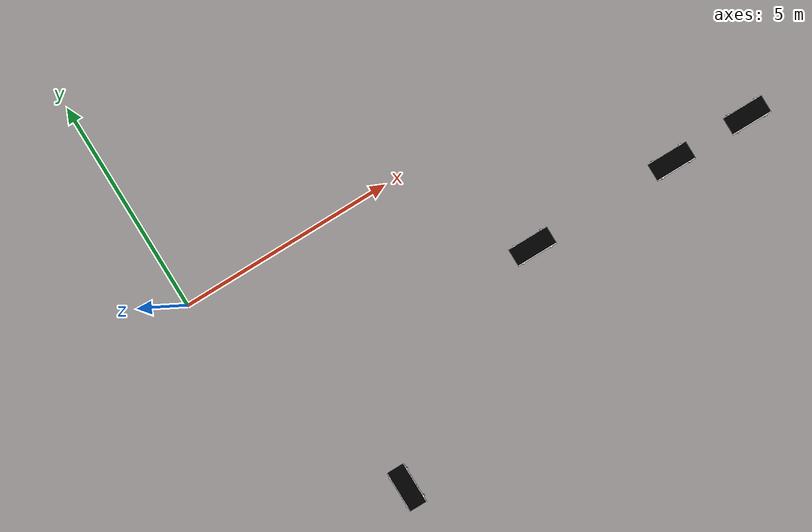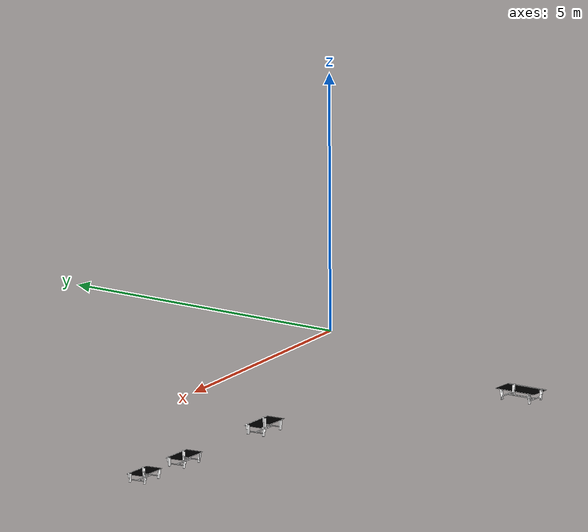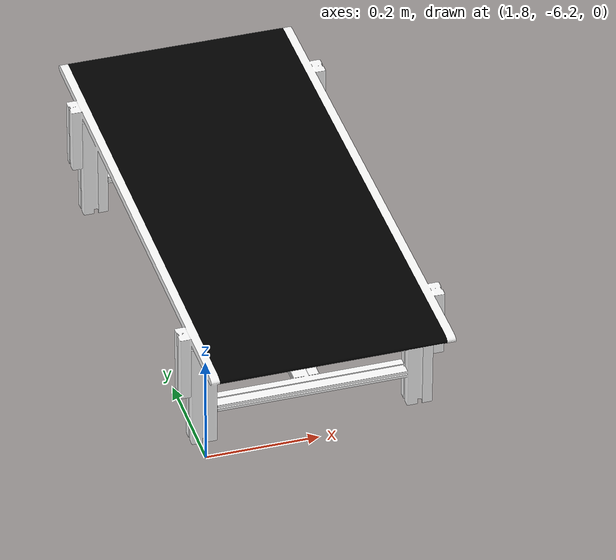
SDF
<?xml version="1.0" ?>
<sdf version="1.4">

   <model name='conveyor_belt'>
      <model name='conveyorbelt_fixed_1'>
        <static>1</static>
        <link name='belt_visual_1'>
          <pose>7 -2.8 0 0 -0 1.57</pose>
          <visual name='visual'>
            <geometry>
              <mesh>
                <scale>1 0.8 0.3</scale>
                <uri>model://conveyor_belt/meshes/conveyor_belt.dae</uri>
              </mesh>
            </geometry>
          </visual>
          <self_collide>0</self_collide>
          <enable_wind>0</enable_wind>
          <kinematic>0</kinematic>
        </link>
      </model>
      <model name='conveyorbelt_moving_1'>
        <allow_auto_disable>0</allow_auto_disable>
        <static>0</static>
        <pose>7 -2.8 0.23 0 -0 1.57</pose>
        <link name='belt_moving_1'>
          <inertial>
            <mass>100</mass>
            <inertia>
              <ixx>0</ixx>
              <ixy>0</ixy>
              <ixz>0</ixz>
              <iyy>0</iyy>
              <iyz>0</iyz>
              <izz>0</izz>
            </inertia>
            <pose>0 0 0 0 0 0</pose>
          </inertial>
          <collision name='belt_collision_1'>
            <geometry>
              <box>
                <size>0.425 0.95 1e-05</size>
              </box>
            </geometry>
            <surface>
              <friction>
                <ode>
                  <mu>100</mu>
                  <mu2>100</mu2>
                </ode>
                <torsional>
                  <coefficient>1000</coefficient>
                  <patch_radius>0.1</patch_radius>
                  <ode/>
                </torsional>
              </friction>
              <contact>
                <ode/>
              </contact>
              <bounce/>
            </surface>
            <max_contacts>10</max_contacts>
          </collision>
          <self_collide>0</self_collide>
          <enable_wind>0</enable_wind>
          <kinematic>0</kinematic>
        </link>
      </model>
      <model name='conveyorbelt_fixed_2'>
        <static>1</static>
        <link name='belt_visual_2'>
          <pose>10.5 -2.8 0 0 -0 1.57</pose>
          <visual name='visual'>
            <geometry>
              <mesh>
                <scale>1 0.8 0.3</scale>
                <uri>model://conveyor_belt/meshes/conveyor_belt.dae</uri>
              </mesh>
            </geometry>
          </visual>
          <self_collide>0</self_collide>
          <enable_wind>0</enable_wind>
          <kinematic>0</kinematic>
        </link>
      </model>
      <model name='conveyorbelt_moving_2'>
        <allow_auto_disable>0</allow_auto_disable>
        <static>0</static>
        <pose>10.5 -2.8 0.23 0 -0 1.57</pose>
        <link name='belt_moving_2'>
          <inertial>
            <mass>100</mass>
            <inertia>
              <ixx>0</ixx>
              <ixy>0</ixy>
              <ixz>0</ixz>
              <iyy>0</iyy>
              <iyz>0</iyz>
              <izz>0</izz>
            </inertia>
            <pose>0 0 0 0 -0 0</pose>
          </inertial>
          <collision name='belt_collision_2'>
            <geometry>
              <box>
                <size>0.425 0.95 1e-05</size>
              </box>
            </geometry>
            <surface>
              <friction>
                <ode>
                  <mu>100</mu>
                  <mu2>100</mu2>
                </ode>
                <torsional>
                  <coefficient>1000</coefficient>
                  <patch_radius>0.1</patch_radius>
                  <ode/>
                </torsional>
              </friction>
              <contact>
                <ode/>
              </contact>
              <bounce/>
            </surface>
            <max_contacts>10</max_contacts>
          </collision>
          <self_collide>0</self_collide>
          <enable_wind>0</enable_wind>
          <kinematic>0</kinematic>
        </link>
      </model>
      <model name='conveyorbelt_fixed_3'>
        <static>1</static>
        <link name='belt_visual_3'>
          <pose>12.4 -2.8 0 0 -0 1.57</pose>
          <visual name='visual'>
            <geometry>
              <mesh>
                <scale>1 0.8 0.3</scale>
                <uri>model://conveyor_belt/meshes/conveyor_belt.dae</uri>
              </mesh>
            </geometry>
          </visual>
          <self_collide>0</self_collide>
          <enable_wind>0</enable_wind>
          <kinematic>0</kinematic>
        </link>
      </model>
      <model name='conveyorbelt_moving_3'>
        <allow_auto_disable>0</allow_auto_disable>
        <static>0</static>
        <pose>12.4 -2.8 0.23 0 -0 1.57</pose>
        <link name='belt_moving_3'>
          <inertial>
            <mass>100</mass>
            <inertia>
              <ixx>0</ixx>
              <ixy>0</ixy>
              <ixz>0</ixz>
              <iyy>0</iyy>
              <iyz>0</iyz>
              <izz>0</izz>
            </inertia>
            <pose>0 0 0 0 -0 0</pose>
          </inertial>
          <collision name='belt_collision_3'>
            <geometry>
              <box>
                <size>0.425 0.95 1e-05</size>
              </box>
            </geometry>
            <surface>
              <friction>
                <ode>
                  <mu>100</mu>
                  <mu2>100</mu2>
                </ode>
                <torsional>
                  <coefficient>1000</coefficient>
                  <patch_radius>0.1</patch_radius>
                  <ode/>
                </torsional>
              </friction>
              <contact>
                <ode/>
              </contact>
              <bounce/>
            </surface>
            <max_contacts>10</max_contacts>
          </collision>
          <self_collide>0</self_collide>
          <enable_wind>0</enable_wind>
          <kinematic>0</kinematic>
        </link>
      </model>
      <model name='conveyorbelt_fixed_4'>
        <static>1</static>
        <link name='belt_visual_4'>
          <pose>2 -5.8 0 0 -0 0</pose>
          <visual name='visual'>
            <geometry>
              <mesh>
                <scale>1 0.8 0.3</scale>
                <uri>model://conveyor_belt/meshes/conveyor_belt.dae</uri>
              </mesh>
            </geometry>
          </visual>
          <self_collide>0</self_collide>
          <enable_wind>0</enable_wind>
          <kinematic>0</kinematic>
        </link>
      </model>
      <model name='conveyorbelt_moving_4'>
        <allow_auto_disable>0</allow_auto_disable>
        <static>0</static>
        <pose>2 -5.8 0.23 0 -0 0</pose>
        <link name='belt_moving_4'>
          <inertial>
            <mass>100</mass>
            <inertia>
              <ixx>0</ixx>
              <ixy>0</ixy>
              <ixz>0</ixz>
              <iyy>0</iyy>
              <iyz>0</iyz>
              <izz>0</izz>
            </inertia>
            <pose>0 0 0 0 -0 0</pose>
          </inertial>
          <collision name='belt_collision_4'>
            <geometry>
              <box>
                <size>0.425 0.95 1e-05</size>
              </box>
            </geometry>
            <surface>
              <friction>
                <ode>
                  <mu>100</mu>
                  <mu2>100</mu2>
                </ode>
                <torsional>
                  <coefficient>1000</coefficient>
                  <patch_radius>0.1</patch_radius>
                  <ode/>
                </torsional>
              </friction>
              <contact>
                <ode/>
              </contact>
              <bounce/>
            </surface>
            <max_contacts>10</max_contacts>
          </collision>
          <self_collide>0</self_collide>
          <enable_wind>0</enable_wind>
          <kinematic>0</kinematic>
        </link>
      </model>

      <joint name='belt_joint_1' type='prismatic'>
        <parent>conveyorbelt_fixed_1::belt_visual_1</parent>
        <child>conveyorbelt_moving_1::belt_moving_1</child>
        <axis>
          <xyz expressed_in='__model__'>-1 0 0</xyz>
          <limit>
            <lower>0</lower>
            <upper>0.01</upper>
          </limit>
          <dynamics>
            <spring_reference>0</spring_reference>
            <spring_stiffness>1</spring_stiffness>
          </dynamics>
        </axis>
      </joint>
      <joint name='belt_joint_2' type='prismatic'>
        <parent>conveyorbelt_fixed_2::belt_visual_2</parent>
        <child>conveyorbelt_moving_2::belt_moving_2</child>
        <axis>
          <xyz expressed_in='__model__'>-1 0 0</xyz>
          <limit>
            <lower>0</lower>
            <upper>0.01</upper>
          </limit>
          <dynamics>
            <spring_reference>0</spring_reference>
            <spring_stiffness>1</spring_stiffness>
          </dynamics>
        </axis>
      </joint>
      <joint name='belt_joint_3' type='prismatic'>
        <parent>conveyorbelt_fixed_3::belt_visual_3</parent>
        <child>conveyorbelt_moving_3::belt_moving_3</child>
        <axis>
          <xyz expressed_in='__model__'>-1 0 0</xyz>
          <limit>
            <lower>0</lower>
            <upper>0.01</upper>
          </limit>
          <dynamics>
            <spring_reference>0</spring_reference>
            <spring_stiffness>1</spring_stiffness>
          </dynamics>
        </axis>
      </joint>
      <joint name='belt_joint_4' type='prismatic'>
        <parent>conveyorbelt_fixed_4::belt_visual_4</parent>
        <child>conveyorbelt_moving_4::belt_moving_4</child>
        <axis>
          <xyz expressed_in='__model__'>-1 0 0</xyz>
          <limit>
            <lower>0</lower>
            <upper>0.01</upper>
          </limit>
          <dynamics>
            <spring_reference>0</spring_reference>
            <spring_stiffness>1</spring_stiffness>
          </dynamics>
        </axis>
      </joint>

      <plugin name='ros2_conveyorbelt_plugin' filename='libros2_conveyorbelt_plugin.so'>
        <ros>
          <namespace/>
        </ros>
        <joint_names>belt_joint_1 belt_joint_2 belt_joint_3 belt_joint_4</joint_names>
        <max_velocities>1 1 1 1</max_velocities>
        <belt_changer_velocity>0.2</belt_changer_velocity>
      </plugin>
    </model>

</sdf>
